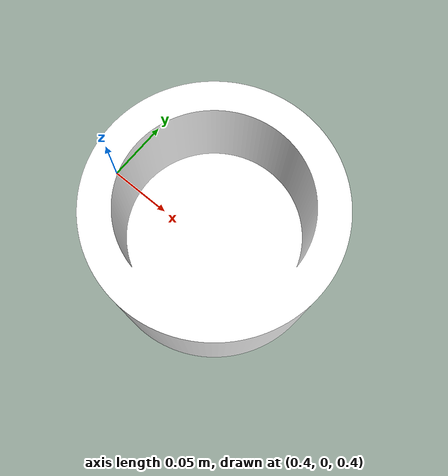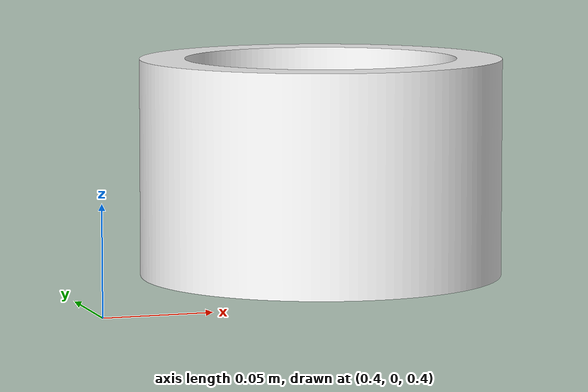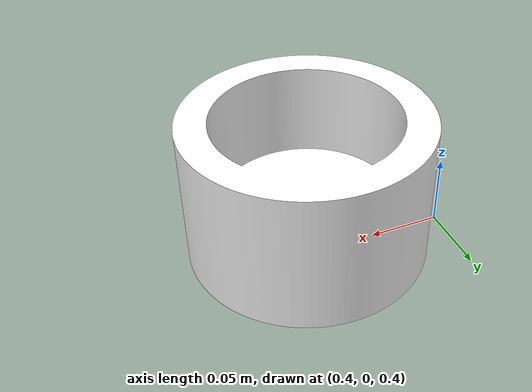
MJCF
<mujoco model="white_plate">
  <asset>
    <!-- Plate geometry -->
    <mesh name="white_plate" file="objects/cube/1.obj" scale="0.008 0.008 0.008"/>
    <!-- Plate material -->
    <material name="white_plate_material" rgba="1 1 1 1"/>
  </asset>
  <worldbody>
    <!-- Plate body -->
    <body name="white_plate" pos="0.5 0 0.415">
      <geom name="white_plate_visual" mesh="white_plate" material="white_plate_material" euler="0 0 0" type="mesh" conaffinity="0" contype="0" group="1"/>
      <geom name="white_plate_collision" mesh="white_plate" euler="0 0 0" type="mesh" conaffinity="1" contype="1" group="4"/>
    </body>
  </worldbody>
</mujoco>
